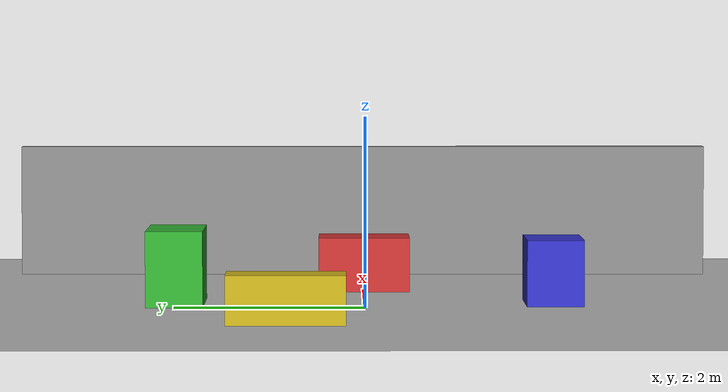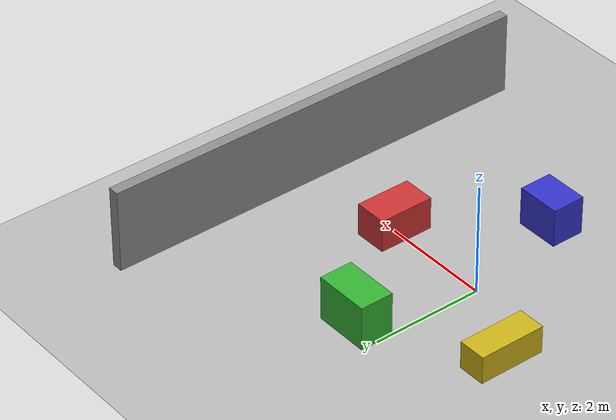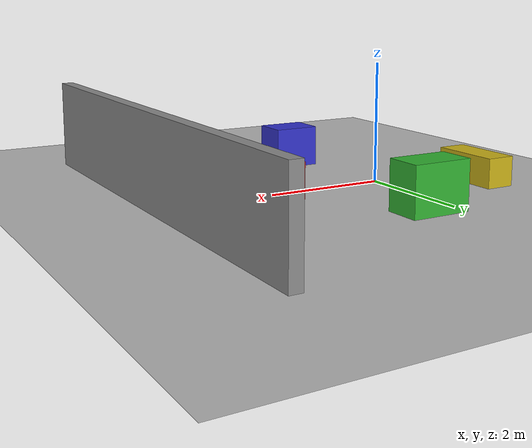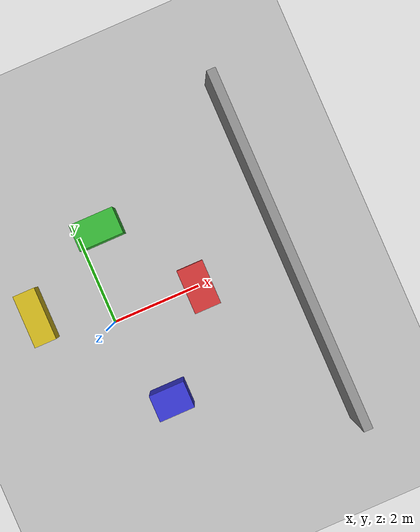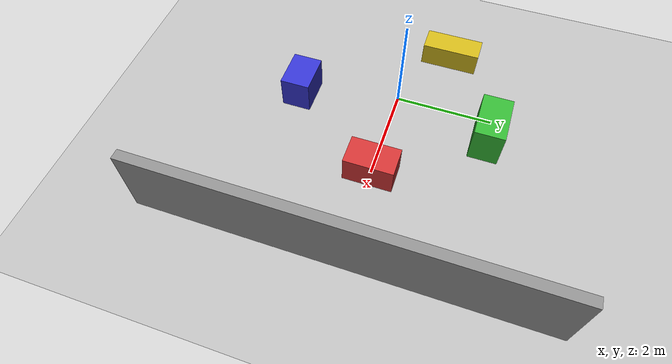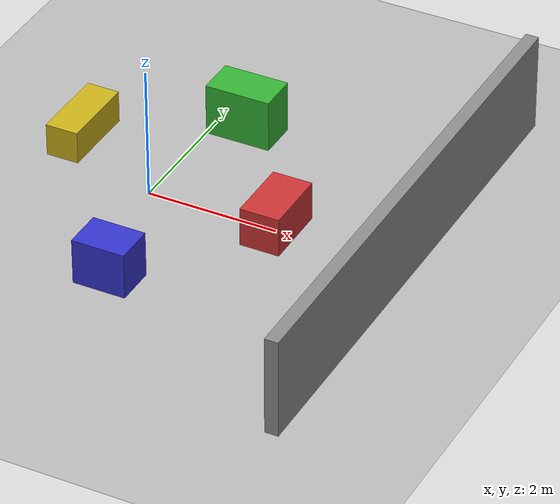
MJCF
<?xml version="1.0" ?>
<mujoco model="scene_empty">
  <compiler angle="radian"/>
  <asset>
    <texture type="skybox" builtin="gradient" rgb1="0.53 0.80 0.98" rgb2="0.15 0.40 0.70" width="800" height="800"/>
    <texture type="2d" name="groundplane" builtin="checker" mark="edge" rgb1="0.65 0.65 0.65"
      rgb2="0.80 0.80 0.80" markrgb="0.4 0.4 0.4" width="300" height="300"/>
    <material name="groundplane" texture="groundplane" texuniform="true" texrepeat="8 8" reflectance="0"/>
  </asset>
  <worldbody>
    <geom name="floor" size="0 0 0.01" type="plane" material="groundplane"/>
    <!-- obstacles for lidar scanning -->
    <geom name="box_front" type="box" pos="2.0 0.0 0.3" size="0.3 0.5 0.3" rgba="0.8 0.2 0.2 1"/>
    <geom name="box_left"  type="box" pos="0.5 2.0 0.4" size="0.5 0.3 0.4" rgba="0.2 0.7 0.2 1"/>
    <geom name="box_right" type="box" pos="0.5 -2.0 0.35" size="0.4 0.3 0.35" rgba="0.2 0.2 0.8 1"/>
    <geom name="box_back"  type="box" pos="-1.5 0.8 0.25" size="0.25 0.6 0.25" rgba="0.8 0.7 0.1 1"/>
    <geom name="wall_far"  type="box" pos="4.0 0.0 0.75" size="0.1 4.0 0.75" rgba="0.55 0.55 0.55 1"/>
  </worldbody>
  <statistic center="1 -0.8 1.1" extent=".35"/>
  <visual>
    <headlight diffuse=".8 .8 .8" ambient=".3 .3 .3" specular="1 1 1"/>
    <rgba force="1 0 0 1"/>
    <global azimuth="140" elevation="-20"/>
    <map force="0.01"/>
    <scale forcewidth="0.3" contactwidth="0.5" contactheight="0.2"/>
    <quality shadowsize="8192"/>
  </visual>
</mujoco>
